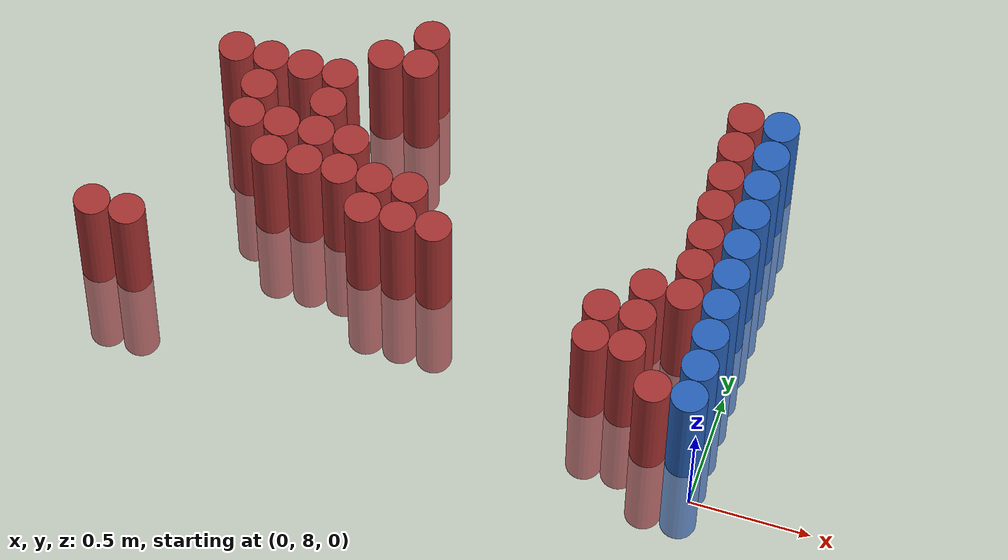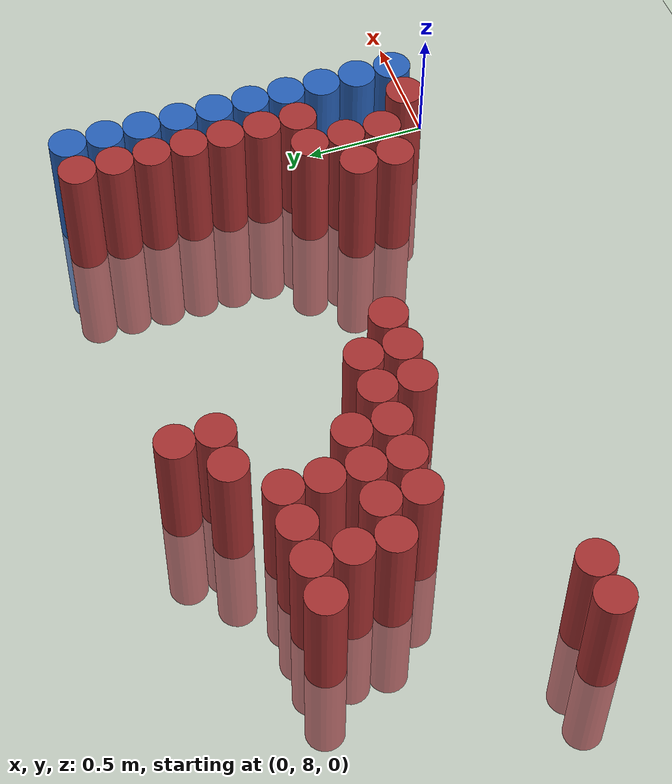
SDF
<sdf version="1.6">
 <world name="default">
  <model name="ground_plane">
   <static>1</static>
   <link name="link">
    <collision name="collision">
     <geometry><plane><normal>0 0 1</normal><size>100 100</size></plane></geometry>
     <surface><friction><ode><mu>100</mu><mu2>50</mu2></ode></friction></surface>
    </collision>
    <visual name="visual">
     <cast_shadows>0</cast_shadows>
     <geometry><plane><normal>0 0 1</normal><size>100 100</size></plane></geometry>
     <material>
      <script><uri>file://media/materials/scripts/gazebo.material</uri><name>Gazebo/Grey</name></script>
     </material>
    </visual>
   </link>
  </model>
  <model name="unit_cylinder_167">
   <static>1</static>
   <pose>-2.625000 8.325000 0.000000 0.000000 0.000000 0.000000</pose>
   <link name="link">
    <inertial>
     <mass>1</mass>
     <inertia><ixx>0.145833</ixx><ixy>0</ixy><ixz>0</ixz><iyy>0.145833</iyy><iyz>0</iyz><izz>0.125</izz></inertia>
    </inertial>
    <collision name="collision">
     <geometry><cylinder><radius>0.075000</radius><length>1</length></cylinder></geometry>
    </collision>
    <visual name="visual">
     <geometry><cylinder><radius>0.075000</radius><length>1</length></cylinder></geometry>
     <material>
      <ambient>0.648000 0.192000 0.192000 1</ambient>
      <diffuse>0.648000 0.192000 0.192000 1</diffuse>
     </material>
     <material>
      <script><name>Gazebo/Grey</name><uri>file://media/materials/scripts/gazebo.material</uri></script>
     </material>
    </visual>
   </link>
  </model>
  <model name="unit_cylinder_173">
   <static>1</static>
   <pose>-2.475000 8.325000 0.000000 0.000000 0.000000 0.000000</pose>
   <link name="link">
    <inertial>
     <mass>1</mass>
     <inertia><ixx>0.145833</ixx><ixy>0</ixy><ixz>0</ixz><iyy>0.145833</iyy><iyz>0</iyz><izz>0.125</izz></inertia>
    </inertial>
    <collision name="collision">
     <geometry><cylinder><radius>0.075000</radius><length>1</length></cylinder></geometry>
    </collision>
    <visual name="visual">
     <geometry><cylinder><radius>0.075000</radius><length>1</length></cylinder></geometry>
     <material>
      <ambient>0.648000 0.192000 0.192000 1</ambient>
      <diffuse>0.648000 0.192000 0.192000 1</diffuse>
     </material>
     <material>
      <script><name>Gazebo/Grey</name><uri>file://media/materials/scripts/gazebo.material</uri></script>
     </material>
    </visual>
   </link>
  </model>
  <model name="unit_cylinder_183">
   <static>1</static>
   <pose>-2.325000 9.225000 0.000000 0.000000 0.000000 0.000000</pose>
   <link name="link">
    <inertial>
     <mass>1</mass>
     <inertia><ixx>0.145833</ixx><ixy>0</ixy><ixz>0</ixz><iyy>0.145833</iyy><iyz>0</iyz><izz>0.125</izz></inertia>
    </inertial>
    <collision name="collision">
     <geometry><cylinder><radius>0.075000</radius><length>1</length></cylinder></geometry>
    </collision>
    <visual name="visual">
     <geometry><cylinder><radius>0.075000</radius><length>1</length></cylinder></geometry>
     <material>
      <ambient>0.648000 0.192000 0.192000 1</ambient>
      <diffuse>0.648000 0.192000 0.192000 1</diffuse>
     </material>
     <material>
      <script><name>Gazebo/Grey</name><uri>file://media/materials/scripts/gazebo.material</uri></script>
     </material>
    </visual>
   </link>
  </model>
  <model name="unit_cylinder_187">
   <static>1</static>
   <pose>-2.175000 8.925000 0.000000 0.000000 0.000000 0.000000</pose>
   <link name="link">
    <inertial>
     <mass>1</mass>
     <inertia><ixx>0.145833</ixx><ixy>0</ixy><ixz>0</ixz><iyy>0.145833</iyy><iyz>0</iyz><izz>0.125</izz></inertia>
    </inertial>
    <collision name="collision">
     <geometry><cylinder><radius>0.075000</radius><length>1</length></cylinder></geometry>
    </collision>
    <visual name="visual">
     <geometry><cylinder><radius>0.075000</radius><length>1</length></cylinder></geometry>
     <material>
      <ambient>0.648000 0.192000 0.192000 1</ambient>
      <diffuse>0.648000 0.192000 0.192000 1</diffuse>
     </material>
     <material>
      <script><name>Gazebo/Grey</name><uri>file://media/materials/scripts/gazebo.material</uri></script>
     </material>
    </visual>
   </link>
  </model>
  <model name="unit_cylinder_188">
   <static>1</static>
   <pose>-2.175000 9.075000 0.000000 0.000000 0.000000 0.000000</pose>
   <link name="link">
    <inertial>
     <mass>1</mass>
     <inertia><ixx>0.145833</ixx><ixy>0</ixy><ixz>0</ixz><iyy>0.145833</iyy><iyz>0</iyz><izz>0.125</izz></inertia>
    </inertial>
    <collision name="collision">
     <geometry><cylinder><radius>0.075000</radius><length>1</length></cylinder></geometry>
    </collision>
    <visual name="visual">
     <geometry><cylinder><radius>0.075000</radius><length>1</length></cylinder></geometry>
     <material>
      <ambient>0.648000 0.192000 0.192000 1</ambient>
      <diffuse>0.648000 0.192000 0.192000 1</diffuse>
     </material>
     <material>
      <script><name>Gazebo/Grey</name><uri>file://media/materials/scripts/gazebo.material</uri></script>
     </material>
    </visual>
   </link>
  </model>
  <model name="unit_cylinder_189">
   <static>1</static>
   <pose>-2.175000 9.225000 0.000000 0.000000 0.000000 0.000000</pose>
   <link name="link">
    <inertial>
     <mass>1</mass>
     <inertia><ixx>0.145833</ixx><ixy>0</ixy><ixz>0</ixz><iyy>0.145833</iyy><iyz>0</iyz><izz>0.125</izz></inertia>
    </inertial>
    <collision name="collision">
     <geometry><cylinder><radius>0.075000</radius><length>1</length></cylinder></geometry>
    </collision>
    <visual name="visual">
     <geometry><cylinder><radius>0.075000</radius><length>1</length></cylinder></geometry>
     <material>
      <ambient>0.648000 0.192000 0.192000 1</ambient>
      <diffuse>0.648000 0.192000 0.192000 1</diffuse>
     </material>
     <material>
      <script><name>Gazebo/Grey</name><uri>file://media/materials/scripts/gazebo.material</uri></script>
     </material>
    </visual>
   </link>
  </model>
  <model name="unit_cylinder_190">
   <static>1</static>
   <pose>-2.025000 8.775000 0.000000 0.000000 0.000000 0.000000</pose>
   <link name="link">
    <inertial>
     <mass>1</mass>
     <inertia><ixx>0.145833</ixx><ixy>0</ixy><ixz>0</ixz><iyy>0.145833</iyy><iyz>0</iyz><izz>0.125</izz></inertia>
    </inertial>
    <collision name="collision">
     <geometry><cylinder><radius>0.075000</radius><length>1</length></cylinder></geometry>
    </collision>
    <visual name="visual">
     <geometry><cylinder><radius>0.075000</radius><length>1</length></cylinder></geometry>
     <material>
      <ambient>0.648000 0.192000 0.192000 1</ambient>
      <diffuse>0.648000 0.192000 0.192000 1</diffuse>
     </material>
     <material>
      <script><name>Gazebo/Grey</name><uri>file://media/materials/scripts/gazebo.material</uri></script>
     </material>
    </visual>
   </link>
  </model>
  <model name="unit_cylinder_191">
   <static>1</static>
   <pose>-2.025000 8.925000 0.000000 0.000000 0.000000 0.000000</pose>
   <link name="link">
    <inertial>
     <mass>1</mass>
     <inertia><ixx>0.145833</ixx><ixy>0</ixy><ixz>0</ixz><iyy>0.145833</iyy><iyz>0</iyz><izz>0.125</izz></inertia>
    </inertial>
    <collision name="collision">
     <geometry><cylinder><radius>0.075000</radius><length>1</length></cylinder></geometry>
    </collision>
    <visual name="visual">
     <geometry><cylinder><radius>0.075000</radius><length>1</length></cylinder></geometry>
     <material>
      <ambient>0.648000 0.192000 0.192000 1</ambient>
      <diffuse>0.648000 0.192000 0.192000 1</diffuse>
     </material>
     <material>
      <script><name>Gazebo/Grey</name><uri>file://media/materials/scripts/gazebo.material</uri></script>
     </material>
    </visual>
   </link>
  </model>
  <model name="unit_cylinder_192">
   <static>1</static>
   <pose>-2.025000 9.225000 0.000000 0.000000 0.000000 0.000000</pose>
   <link name="link">
    <inertial>
     <mass>1</mass>
     <inertia><ixx>0.145833</ixx><ixy>0</ixy><ixz>0</ixz><iyy>0.145833</iyy><iyz>0</iyz><izz>0.125</izz></inertia>
    </inertial>
    <collision name="collision">
     <geometry><cylinder><radius>0.075000</radius><length>1</length></cylinder></geometry>
    </collision>
    <visual name="visual">
     <geometry><cylinder><radius>0.075000</radius><length>1</length></cylinder></geometry>
     <material>
      <ambient>0.648000 0.192000 0.192000 1</ambient>
      <diffuse>0.648000 0.192000 0.192000 1</diffuse>
     </material>
     <material>
      <script><name>Gazebo/Grey</name><uri>file://media/materials/scripts/gazebo.material</uri></script>
     </material>
    </visual>
   </link>
  </model>
  <model name="unit_cylinder_193">
   <static>1</static>
   <pose>-1.875000 8.775000 0.000000 0.000000 0.000000 0.000000</pose>
   <link name="link">
    <inertial>
     <mass>1</mass>
     <inertia><ixx>0.145833</ixx><ixy>0</ixy><ixz>0</ixz><iyy>0.145833</iyy><iyz>0</iyz><izz>0.125</izz></inertia>
    </inertial>
    <collision name="collision">
     <geometry><cylinder><radius>0.075000</radius><length>1</length></cylinder></geometry>
    </collision>
    <visual name="visual">
     <geometry><cylinder><radius>0.075000</radius><length>1</length></cylinder></geometry>
     <material>
      <ambient>0.648000 0.192000 0.192000 1</ambient>
      <diffuse>0.648000 0.192000 0.192000 1</diffuse>
     </material>
     <material>
      <script><name>Gazebo/Grey</name><uri>file://media/materials/scripts/gazebo.material</uri></script>
     </material>
    </visual>
   </link>
  </model>
  <model name="unit_cylinder_194">
   <static>1</static>
   <pose>-1.875000 8.925000 0.000000 0.000000 0.000000 0.000000</pose>
   <link name="link">
    <inertial>
     <mass>1</mass>
     <inertia><ixx>0.145833</ixx><ixy>0</ixy><ixz>0</ixz><iyy>0.145833</iyy><iyz>0</iyz><izz>0.125</izz></inertia>
    </inertial>
    <collision name="collision">
     <geometry><cylinder><radius>0.075000</radius><length>1</length></cylinder></geometry>
    </collision>
    <visual name="visual">
     <geometry><cylinder><radius>0.075000</radius><length>1</length></cylinder></geometry>
     <material>
      <ambient>0.648000 0.192000 0.192000 1</ambient>
      <diffuse>0.648000 0.192000 0.192000 1</diffuse>
     </material>
     <material>
      <script><name>Gazebo/Grey</name><uri>file://media/materials/scripts/gazebo.material</uri></script>
     </material>
    </visual>
   </link>
  </model>
  <model name="unit_cylinder_195">
   <static>1</static>
   <pose>-1.875000 9.075000 0.000000 0.000000 0.000000 0.000000</pose>
   <link name="link">
    <inertial>
     <mass>1</mass>
     <inertia><ixx>0.145833</ixx><ixy>0</ixy><ixz>0</ixz><iyy>0.145833</iyy><iyz>0</iyz><izz>0.125</izz></inertia>
    </inertial>
    <collision name="collision">
     <geometry><cylinder><radius>0.075000</radius><length>1</length></cylinder></geometry>
    </collision>
    <visual name="visual">
     <geometry><cylinder><radius>0.075000</radius><length>1</length></cylinder></geometry>
     <material>
      <ambient>0.648000 0.192000 0.192000 1</ambient>
      <diffuse>0.648000 0.192000 0.192000 1</diffuse>
     </material>
     <material>
      <script><name>Gazebo/Grey</name><uri>file://media/materials/scripts/gazebo.material</uri></script>
     </material>
    </visual>
   </link>
  </model>
  <model name="unit_cylinder_196">
   <static>1</static>
   <pose>-1.875000 9.225000 0.000000 0.000000 0.000000 0.000000</pose>
   <link name="link">
    <inertial>
     <mass>1</mass>
     <inertia><ixx>0.145833</ixx><ixy>0</ixy><ixz>0</ixz><iyy>0.145833</iyy><iyz>0</iyz><izz>0.125</izz></inertia>
    </inertial>
    <collision name="collision">
     <geometry><cylinder><radius>0.075000</radius><length>1</length></cylinder></geometry>
    </collision>
    <visual name="visual">
     <geometry><cylinder><radius>0.075000</radius><length>1</length></cylinder></geometry>
     <material>
      <ambient>0.648000 0.192000 0.192000 1</ambient>
      <diffuse>0.648000 0.192000 0.192000 1</diffuse>
     </material>
     <material>
      <script><name>Gazebo/Grey</name><uri>file://media/materials/scripts/gazebo.material</uri></script>
     </material>
    </visual>
   </link>
  </model>
  <model name="unit_cylinder_197">
   <static>1</static>
   <pose>-1.725000 8.775000 0.000000 0.000000 0.000000 0.000000</pose>
   <link name="link">
    <inertial>
     <mass>1</mass>
     <inertia><ixx>0.145833</ixx><ixy>0</ixy><ixz>0</ixz><iyy>0.145833</iyy><iyz>0</iyz><izz>0.125</izz></inertia>
    </inertial>
    <collision name="collision">
     <geometry><cylinder><radius>0.075000</radius><length>1</length></cylinder></geometry>
    </collision>
    <visual name="visual">
     <geometry><cylinder><radius>0.075000</radius><length>1</length></cylinder></geometry>
     <material>
      <ambient>0.648000 0.192000 0.192000 1</ambient>
      <diffuse>0.648000 0.192000 0.192000 1</diffuse>
     </material>
     <material>
      <script><name>Gazebo/Grey</name><uri>file://media/materials/scripts/gazebo.material</uri></script>
     </material>
    </visual>
   </link>
  </model>
  <model name="unit_cylinder_198">
   <static>1</static>
   <pose>-1.725000 8.925000 0.000000 0.000000 0.000000 0.000000</pose>
   <link name="link">
    <inertial>
     <mass>1</mass>
     <inertia><ixx>0.145833</ixx><ixy>0</ixy><ixz>0</ixz><iyy>0.145833</iyy><iyz>0</iyz><izz>0.125</izz></inertia>
    </inertial>
    <collision name="collision">
     <geometry><cylinder><radius>0.075000</radius><length>1</length></cylinder></geometry>
    </collision>
    <visual name="visual">
     <geometry><cylinder><radius>0.075000</radius><length>1</length></cylinder></geometry>
     <material>
      <ambient>0.648000 0.192000 0.192000 1</ambient>
      <diffuse>0.648000 0.192000 0.192000 1</diffuse>
     </material>
     <material>
      <script><name>Gazebo/Grey</name><uri>file://media/materials/scripts/gazebo.material</uri></script>
     </material>
    </visual>
   </link>
  </model>
  <model name="unit_cylinder_199">
   <static>1</static>
   <pose>-1.725000 9.375000 0.000000 0.000000 0.000000 0.000000</pose>
   <link name="link">
    <inertial>
     <mass>1</mass>
     <inertia><ixx>0.145833</ixx><ixy>0</ixy><ixz>0</ixz><iyy>0.145833</iyy><iyz>0</iyz><izz>0.125</izz></inertia>
    </inertial>
    <collision name="collision">
     <geometry><cylinder><radius>0.075000</radius><length>1</length></cylinder></geometry>
    </collision>
    <visual name="visual">
     <geometry><cylinder><radius>0.075000</radius><length>1</length></cylinder></geometry>
     <material>
      <ambient>0.648000 0.192000 0.192000 1</ambient>
      <diffuse>0.648000 0.192000 0.192000 1</diffuse>
     </material>
     <material>
      <script><name>Gazebo/Grey</name><uri>file://media/materials/scripts/gazebo.material</uri></script>
     </material>
    </visual>
   </link>
  </model>
  <model name="unit_cylinder_203">
   <static>1</static>
   <pose>-1.575000 8.625000 0.000000 0.000000 0.000000 0.000000</pose>
   <link name="link">
    <inertial>
     <mass>1</mass>
     <inertia><ixx>0.145833</ixx><ixy>0</ixy><ixz>0</ixz><iyy>0.145833</iyy><iyz>0</iyz><izz>0.125</izz></inertia>
    </inertial>
    <collision name="collision">
     <geometry><cylinder><radius>0.075000</radius><length>1</length></cylinder></geometry>
    </collision>
    <visual name="visual">
     <geometry><cylinder><radius>0.075000</radius><length>1</length></cylinder></geometry>
     <material>
      <ambient>0.648000 0.192000 0.192000 1</ambient>
      <diffuse>0.648000 0.192000 0.192000 1</diffuse>
     </material>
     <material>
      <script><name>Gazebo/Grey</name><uri>file://media/materials/scripts/gazebo.material</uri></script>
     </material>
    </visual>
   </link>
  </model>
  <model name="unit_cylinder_204">
   <static>1</static>
   <pose>-1.575000 8.775000 0.000000 0.000000 0.000000 0.000000</pose>
   <link name="link">
    <inertial>
     <mass>1</mass>
     <inertia><ixx>0.145833</ixx><ixy>0</ixy><ixz>0</ixz><iyy>0.145833</iyy><iyz>0</iyz><izz>0.125</izz></inertia>
    </inertial>
    <collision name="collision">
     <geometry><cylinder><radius>0.075000</radius><length>1</length></cylinder></geometry>
    </collision>
    <visual name="visual">
     <geometry><cylinder><radius>0.075000</radius><length>1</length></cylinder></geometry>
     <material>
      <ambient>0.648000 0.192000 0.192000 1</ambient>
      <diffuse>0.648000 0.192000 0.192000 1</diffuse>
     </material>
     <material>
      <script><name>Gazebo/Grey</name><uri>file://media/materials/scripts/gazebo.material</uri></script>
     </material>
    </visual>
   </link>
  </model>
  <model name="unit_cylinder_205">
   <static>1</static>
   <pose>-1.575000 9.375000 0.000000 0.000000 0.000000 0.000000</pose>
   <link name="link">
    <inertial>
     <mass>1</mass>
     <inertia><ixx>0.145833</ixx><ixy>0</ixy><ixz>0</ixz><iyy>0.145833</iyy><iyz>0</iyz><izz>0.125</izz></inertia>
    </inertial>
    <collision name="collision">
     <geometry><cylinder><radius>0.075000</radius><length>1</length></cylinder></geometry>
    </collision>
    <visual name="visual">
     <geometry><cylinder><radius>0.075000</radius><length>1</length></cylinder></geometry>
     <material>
      <ambient>0.648000 0.192000 0.192000 1</ambient>
      <diffuse>0.648000 0.192000 0.192000 1</diffuse>
     </material>
     <material>
      <script><name>Gazebo/Grey</name><uri>file://media/materials/scripts/gazebo.material</uri></script>
     </material>
    </visual>
   </link>
  </model>
  <model name="unit_cylinder_206">
   <static>1</static>
   <pose>-1.575000 9.525000 0.000000 0.000000 0.000000 0.000000</pose>
   <link name="link">
    <inertial>
     <mass>1</mass>
     <inertia><ixx>0.145833</ixx><ixy>0</ixy><ixz>0</ixz><iyy>0.145833</iyy><iyz>0</iyz><izz>0.125</izz></inertia>
    </inertial>
    <collision name="collision">
     <geometry><cylinder><radius>0.075000</radius><length>1</length></cylinder></geometry>
    </collision>
    <visual name="visual">
     <geometry><cylinder><radius>0.075000</radius><length>1</length></cylinder></geometry>
     <material>
      <ambient>0.648000 0.192000 0.192000 1</ambient>
      <diffuse>0.648000 0.192000 0.192000 1</diffuse>
     </material>
     <material>
      <script><name>Gazebo/Grey</name><uri>file://media/materials/scripts/gazebo.material</uri></script>
     </material>
    </visual>
   </link>
  </model>
  <model name="unit_cylinder_211">
   <static>1</static>
   <pose>-1.425000 8.625000 0.000000 0.000000 0.000000 0.000000</pose>
   <link name="link">
    <inertial>
     <mass>1</mass>
     <inertia><ixx>0.145833</ixx><ixy>0</ixy><ixz>0</ixz><iyy>0.145833</iyy><iyz>0</iyz><izz>0.125</izz></inertia>
    </inertial>
    <collision name="collision">
     <geometry><cylinder><radius>0.075000</radius><length>1</length></cylinder></geometry>
    </collision>
    <visual name="visual">
     <geometry><cylinder><radius>0.075000</radius><length>1</length></cylinder></geometry>
     <material>
      <ambient>0.648000 0.192000 0.192000 1</ambient>
      <diffuse>0.648000 0.192000 0.192000 1</diffuse>
     </material>
     <material>
      <script><name>Gazebo/Grey</name><uri>file://media/materials/scripts/gazebo.material</uri></script>
     </material>
    </visual>
   </link>
  </model>
  <model name="unit_cylinder_212">
   <static>1</static>
   <pose>-1.425000 8.775000 0.000000 0.000000 0.000000 0.000000</pose>
   <link name="link">
    <inertial>
     <mass>1</mass>
     <inertia><ixx>0.145833</ixx><ixy>0</ixy><ixz>0</ixz><iyy>0.145833</iyy><iyz>0</iyz><izz>0.125</izz></inertia>
    </inertial>
    <collision name="collision">
     <geometry><cylinder><radius>0.075000</radius><length>1</length></cylinder></geometry>
    </collision>
    <visual name="visual">
     <geometry><cylinder><radius>0.075000</radius><length>1</length></cylinder></geometry>
     <material>
      <ambient>0.648000 0.192000 0.192000 1</ambient>
      <diffuse>0.648000 0.192000 0.192000 1</diffuse>
     </material>
     <material>
      <script><name>Gazebo/Grey</name><uri>file://media/materials/scripts/gazebo.material</uri></script>
     </material>
    </visual>
   </link>
  </model>
  <model name="unit_cylinder_213">
   <static>1</static>
   <pose>-1.275000 8.625000 0.000000 0.000000 0.000000 0.000000</pose>
   <link name="link">
    <inertial>
     <mass>1</mass>
     <inertia><ixx>0.145833</ixx><ixy>0</ixy><ixz>0</ixz><iyy>0.145833</iyy><iyz>0</iyz><izz>0.125</izz></inertia>
    </inertial>
    <collision name="collision">
     <geometry><cylinder><radius>0.075000</radius><length>1</length></cylinder></geometry>
    </collision>
    <visual name="visual">
     <geometry><cylinder><radius>0.075000</radius><length>1</length></cylinder></geometry>
     <material>
      <ambient>0.648000 0.192000 0.192000 1</ambient>
      <diffuse>0.648000 0.192000 0.192000 1</diffuse>
     </material>
     <material>
      <script><name>Gazebo/Grey</name><uri>file://media/materials/scripts/gazebo.material</uri></script>
     </material>
    </visual>
   </link>
  </model>
  <model name="unit_cylinder_220">
   <static>1</static>
   <pose>-0.525000 8.325000 0.000000 0.000000 0.000000 0.000000</pose>
   <link name="link">
    <inertial>
     <mass>1</mass>
     <inertia><ixx>0.145833</ixx><ixy>0</ixy><ixz>0</ixz><iyy>0.145833</iyy><iyz>0</iyz><izz>0.125</izz></inertia>
    </inertial>
    <collision name="collision">
     <geometry><cylinder><radius>0.075000</radius><length>1</length></cylinder></geometry>
    </collision>
    <visual name="visual">
     <geometry><cylinder><radius>0.075000</radius><length>1</length></cylinder></geometry>
     <material>
      <ambient>0.648000 0.192000 0.192000 1</ambient>
      <diffuse>0.648000 0.192000 0.192000 1</diffuse>
     </material>
     <material>
      <script><name>Gazebo/Grey</name><uri>file://media/materials/scripts/gazebo.material</uri></script>
     </material>
    </visual>
   </link>
  </model>
  <model name="unit_cylinder_221">
   <static>1</static>
   <pose>-0.525000 8.475000 0.000000 0.000000 0.000000 0.000000</pose>
   <link name="link">
    <inertial>
     <mass>1</mass>
     <inertia><ixx>0.145833</ixx><ixy>0</ixy><ixz>0</ixz><iyy>0.145833</iyy><iyz>0</iyz><izz>0.125</izz></inertia>
    </inertial>
    <collision name="collision">
     <geometry><cylinder><radius>0.075000</radius><length>1</length></cylinder></geometry>
    </collision>
    <visual name="visual">
     <geometry><cylinder><radius>0.075000</radius><length>1</length></cylinder></geometry>
     <material>
      <ambient>0.648000 0.192000 0.192000 1</ambient>
      <diffuse>0.648000 0.192000 0.192000 1</diffuse>
     </material>
     <material>
      <script><name>Gazebo/Grey</name><uri>file://media/materials/scripts/gazebo.material</uri></script>
     </material>
    </visual>
   </link>
  </model>
  <model name="unit_cylinder_226">
   <static>1</static>
   <pose>-0.375000 8.325000 0.000000 0.000000 0.000000 0.000000</pose>
   <link name="link">
    <inertial>
     <mass>1</mass>
     <inertia><ixx>0.145833</ixx><ixy>0</ixy><ixz>0</ixz><iyy>0.145833</iyy><iyz>0</iyz><izz>0.125</izz></inertia>
    </inertial>
    <collision name="collision">
     <geometry><cylinder><radius>0.075000</radius><length>1</length></cylinder></geometry>
    </collision>
    <visual name="visual">
     <geometry><cylinder><radius>0.075000</radius><length>1</length></cylinder></geometry>
     <material>
      <ambient>0.648000 0.192000 0.192000 1</ambient>
      <diffuse>0.648000 0.192000 0.192000 1</diffuse>
     </material>
     <material>
      <script><name>Gazebo/Grey</name><uri>file://media/materials/scripts/gazebo.material</uri></script>
     </material>
    </visual>
   </link>
  </model>
  <model name="unit_cylinder_227">
   <static>1</static>
   <pose>-0.375000 8.475000 0.000000 0.000000 0.000000 0.000000</pose>
   <link name="link">
    <inertial>
     <mass>1</mass>
     <inertia><ixx>0.145833</ixx><ixy>0</ixy><ixz>0</ixz><iyy>0.145833</iyy><iyz>0</iyz><izz>0.125</izz></inertia>
    </inertial>
    <collision name="collision">
     <geometry><cylinder><radius>0.075000</radius><length>1</length></cylinder></geometry>
    </collision>
    <visual name="visual">
     <geometry><cylinder><radius>0.075000</radius><length>1</length></cylinder></geometry>
     <material>
      <ambient>0.648000 0.192000 0.192000 1</ambient>
      <diffuse>0.648000 0.192000 0.192000 1</diffuse>
     </material>
     <material>
      <script><name>Gazebo/Grey</name><uri>file://media/materials/scripts/gazebo.material</uri></script>
     </material>
    </visual>
   </link>
  </model>
  <model name="unit_cylinder_228">
   <static>1</static>
   <pose>-0.375000 8.625000 0.000000 0.000000 0.000000 0.000000</pose>
   <link name="link">
    <inertial>
     <mass>1</mass>
     <inertia><ixx>0.145833</ixx><ixy>0</ixy><ixz>0</ixz><iyy>0.145833</iyy><iyz>0</iyz><izz>0.125</izz></inertia>
    </inertial>
    <collision name="collision">
     <geometry><cylinder><radius>0.075000</radius><length>1</length></cylinder></geometry>
    </collision>
    <visual name="visual">
     <geometry><cylinder><radius>0.075000</radius><length>1</length></cylinder></geometry>
     <material>
      <ambient>0.648000 0.192000 0.192000 1</ambient>
      <diffuse>0.648000 0.192000 0.192000 1</diffuse>
     </material>
     <material>
      <script><name>Gazebo/Grey</name><uri>file://media/materials/scripts/gazebo.material</uri></script>
     </material>
    </visual>
   </link>
  </model>
  <model name="unit_cylinder_239">
   <static>1</static>
   <pose>-0.225000 8.175000 0.000000 0.000000 0.000000 0.000000</pose>
   <link name="link">
    <inertial>
     <mass>1</mass>
     <inertia><ixx>0.145833</ixx><ixy>0</ixy><ixz>0</ixz><iyy>0.145833</iyy><iyz>0</iyz><izz>0.125</izz></inertia>
    </inertial>
    <collision name="collision">
     <geometry><cylinder><radius>0.075000</radius><length>1</length></cylinder></geometry>
    </collision>
    <visual name="visual">
     <geometry><cylinder><radius>0.075000</radius><length>1</length></cylinder></geometry>
     <material>
      <ambient>0.648000 0.192000 0.192000 1</ambient>
      <diffuse>0.648000 0.192000 0.192000 1</diffuse>
     </material>
     <material>
      <script><name>Gazebo/Grey</name><uri>file://media/materials/scripts/gazebo.material</uri></script>
     </material>
    </visual>
   </link>
  </model>
  <model name="unit_cylinder_240">
   <static>1</static>
   <pose>-0.225000 8.625000 0.000000 0.000000 0.000000 0.000000</pose>
   <link name="link">
    <inertial>
     <mass>1</mass>
     <inertia><ixx>0.145833</ixx><ixy>0</ixy><ixz>0</ixz><iyy>0.145833</iyy><iyz>0</iyz><izz>0.125</izz></inertia>
    </inertial>
    <collision name="collision">
     <geometry><cylinder><radius>0.075000</radius><length>1</length></cylinder></geometry>
    </collision>
    <visual name="visual">
     <geometry><cylinder><radius>0.075000</radius><length>1</length></cylinder></geometry>
     <material>
      <ambient>0.648000 0.192000 0.192000 1</ambient>
      <diffuse>0.648000 0.192000 0.192000 1</diffuse>
     </material>
     <material>
      <script><name>Gazebo/Grey</name><uri>file://media/materials/scripts/gazebo.material</uri></script>
     </material>
    </visual>
   </link>
  </model>
  <model name="unit_cylinder_241">
   <static>1</static>
   <pose>-0.225000 8.775000 0.000000 0.000000 0.000000 0.000000</pose>
   <link name="link">
    <inertial>
     <mass>1</mass>
     <inertia><ixx>0.145833</ixx><ixy>0</ixy><ixz>0</ixz><iyy>0.145833</iyy><iyz>0</iyz><izz>0.125</izz></inertia>
    </inertial>
    <collision name="collision">
     <geometry><cylinder><radius>0.075000</radius><length>1</length></cylinder></geometry>
    </collision>
    <visual name="visual">
     <geometry><cylinder><radius>0.075000</radius><length>1</length></cylinder></geometry>
     <material>
      <ambient>0.648000 0.192000 0.192000 1</ambient>
      <diffuse>0.648000 0.192000 0.192000 1</diffuse>
     </material>
     <material>
      <script><name>Gazebo/Grey</name><uri>file://media/materials/scripts/gazebo.material</uri></script>
     </material>
    </visual>
   </link>
  </model>
  <model name="unit_cylinder_242">
   <static>1</static>
   <pose>-0.225000 8.925000 0.000000 0.000000 0.000000 0.000000</pose>
   <link name="link">
    <inertial>
     <mass>1</mass>
     <inertia><ixx>0.145833</ixx><ixy>0</ixy><ixz>0</ixz><iyy>0.145833</iyy><iyz>0</iyz><izz>0.125</izz></inertia>
    </inertial>
    <collision name="collision">
     <geometry><cylinder><radius>0.075000</radius><length>1</length></cylinder></geometry>
    </collision>
    <visual name="visual">
     <geometry><cylinder><radius>0.075000</radius><length>1</length></cylinder></geometry>
     <material>
      <ambient>0.648000 0.192000 0.192000 1</ambient>
      <diffuse>0.648000 0.192000 0.192000 1</diffuse>
     </material>
     <material>
      <script><name>Gazebo/Grey</name><uri>file://media/materials/scripts/gazebo.material</uri></script>
     </material>
    </visual>
   </link>
  </model>
  <model name="unit_cylinder_243">
   <static>1</static>
   <pose>-0.225000 9.075000 0.000000 0.000000 0.000000 0.000000</pose>
   <link name="link">
    <inertial>
     <mass>1</mass>
     <inertia><ixx>0.145833</ixx><ixy>0</ixy><ixz>0</ixz><iyy>0.145833</iyy><iyz>0</iyz><izz>0.125</izz></inertia>
    </inertial>
    <collision name="collision">
     <geometry><cylinder><radius>0.075000</radius><length>1</length></cylinder></geometry>
    </collision>
    <visual name="visual">
     <geometry><cylinder><radius>0.075000</radius><length>1</length></cylinder></geometry>
     <material>
      <ambient>0.648000 0.192000 0.192000 1</ambient>
      <diffuse>0.648000 0.192000 0.192000 1</diffuse>
     </material>
     <material>
      <script><name>Gazebo/Grey</name><uri>file://media/materials/scripts/gazebo.material</uri></script>
     </material>
    </visual>
   </link>
  </model>
  <model name="unit_cylinder_244">
   <static>1</static>
   <pose>-0.225000 9.225000 0.000000 0.000000 0.000000 0.000000</pose>
   <link name="link">
    <inertial>
     <mass>1</mass>
     <inertia><ixx>0.145833</ixx><ixy>0</ixy><ixz>0</ixz><iyy>0.145833</iyy><iyz>0</iyz><izz>0.125</izz></inertia>
    </inertial>
    <collision name="collision">
     <geometry><cylinder><radius>0.075000</radius><length>1</length></cylinder></geometry>
    </collision>
    <visual name="visual">
     <geometry><cylinder><radius>0.075000</radius><length>1</length></cylinder></geometry>
     <material>
      <ambient>0.648000 0.192000 0.192000 1</ambient>
      <diffuse>0.648000 0.192000 0.192000 1</diffuse>
     </material>
     <material>
      <script><name>Gazebo/Grey</name><uri>file://media/materials/scripts/gazebo.material</uri></script>
     </material>
    </visual>
   </link>
  </model>
  <model name="unit_cylinder_245">
   <static>1</static>
   <pose>-0.225000 9.375000 0.000000 0.000000 0.000000 0.000000</pose>
   <link name="link">
    <inertial>
     <mass>1</mass>
     <inertia><ixx>0.145833</ixx><ixy>0</ixy><ixz>0</ixz><iyy>0.145833</iyy><iyz>0</iyz><izz>0.125</izz></inertia>
    </inertial>
    <collision name="collision">
     <geometry><cylinder><radius>0.075000</radius><length>1</length></cylinder></geometry>
    </collision>
    <visual name="visual">
     <geometry><cylinder><radius>0.075000</radius><length>1</length></cylinder></geometry>
     <material>
      <ambient>0.648000 0.192000 0.192000 1</ambient>
      <diffuse>0.648000 0.192000 0.192000 1</diffuse>
     </material>
     <material>
      <script><name>Gazebo/Grey</name><uri>file://media/materials/scripts/gazebo.material</uri></script>
     </material>
    </visual>
   </link>
  </model>
  <model name="unit_cylinder_246">
   <static>1</static>
   <pose>-0.225000 9.525000 0.000000 0.000000 0.000000 0.000000</pose>
   <link name="link">
    <inertial>
     <mass>1</mass>
     <inertia><ixx>0.145833</ixx><ixy>0</ixy><ixz>0</ixz><iyy>0.145833</iyy><iyz>0</iyz><izz>0.125</izz></inertia>
    </inertial>
    <collision name="collision">
     <geometry><cylinder><radius>0.075000</radius><length>1</length></cylinder></geometry>
    </collision>
    <visual name="visual">
     <geometry><cylinder><radius>0.075000</radius><length>1</length></cylinder></geometry>
     <material>
      <ambient>0.648000 0.192000 0.192000 1</ambient>
      <diffuse>0.648000 0.192000 0.192000 1</diffuse>
     </material>
     <material>
      <script><name>Gazebo/Grey</name><uri>file://media/materials/scripts/gazebo.material</uri></script>
     </material>
    </visual>
   </link>
  </model>
  <model name="unit_cylinder_267">
   <static>1</static>
   <pose>-0.075000 8.175000 0.000000 0.000000 0.000000 0.000000</pose>
   <link name="link">
    <inertial>
     <mass>1</mass>
     <inertia><ixx>0.145833</ixx><ixy>0</ixy><ixz>0</ixz><iyy>0.145833</iyy><iyz>0</iyz><izz>0.125</izz></inertia>
    </inertial>
    <collision name="collision">
     <geometry><cylinder><radius>0.075000</radius><length>1</length></cylinder></geometry>
    </collision>
    <visual name="visual">
     <geometry><cylinder><radius>0.075000</radius><length>1</length></cylinder></geometry>
     <material>
      <ambient>0.152000 0.379000 0.720000 1</ambient>
      <diffuse>0.152000 0.379000 0.720000 1</diffuse>
     </material>
     <material>
      <script><name>Gazebo/Grey</name><uri>file://media/materials/scripts/gazebo.material</uri></script>
     </material>
    </visual>
   </link>
  </model>
  <model name="unit_cylinder_268">
   <static>1</static>
   <pose>-0.075000 8.325000 0.000000 0.000000 0.000000 0.000000</pose>
   <link name="link">
    <inertial>
     <mass>1</mass>
     <inertia><ixx>0.145833</ixx><ixy>0</ixy><ixz>0</ixz><iyy>0.145833</iyy><iyz>0</iyz><izz>0.125</izz></inertia>
    </inertial>
    <collision name="collision">
     <geometry><cylinder><radius>0.075000</radius><length>1</length></cylinder></geometry>
    </collision>
    <visual name="visual">
     <geometry><cylinder><radius>0.075000</radius><length>1</length></cylinder></geometry>
     <material>
      <ambient>0.152000 0.379000 0.720000 1</ambient>
      <diffuse>0.152000 0.379000 0.720000 1</diffuse>
     </material>
     <material>
      <script><name>Gazebo/Grey</name><uri>file://media/materials/scripts/gazebo.material</uri></script>
     </material>
    </visual>
   </link>
  </model>
  <model name="unit_cylinder_269">
   <static>1</static>
   <pose>-0.075000 8.475000 0.000000 0.000000 0.000000 0.000000</pose>
   <link name="link">
    <inertial>
     <mass>1</mass>
     <inertia><ixx>0.145833</ixx><ixy>0</ixy><ixz>0</ixz><iyy>0.145833</iyy><iyz>0</iyz><izz>0.125</izz></inertia>
    </inertial>
    <collision name="collision">
     <geometry><cylinder><radius>0.075000</radius><length>1</length></cylinder></geometry>
    </collision>
    <visual name="visual">
     <geometry><cylinder><radius>0.075000</radius><length>1</length></cylinder></geometry>
     <material>
      <ambient>0.152000 0.379000 0.720000 1</ambient>
      <diffuse>0.152000 0.379000 0.720000 1</diffuse>
     </material>
     <material>
      <script><name>Gazebo/Grey</name><uri>file://media/materials/scripts/gazebo.material</uri></script>
     </material>
    </visual>
   </link>
  </model>
  <model name="unit_cylinder_270">
   <static>1</static>
   <pose>-0.075000 8.625000 0.000000 0.000000 0.000000 0.000000</pose>
   <link name="link">
    <inertial>
     <mass>1</mass>
     <inertia><ixx>0.145833</ixx><ixy>0</ixy><ixz>0</ixz><iyy>0.145833</iyy><iyz>0</iyz><izz>0.125</izz></inertia>
    </inertial>
    <collision name="collision">
     <geometry><cylinder><radius>0.075000</radius><length>1</length></cylinder></geometry>
    </collision>
    <visual name="visual">
     <geometry><cylinder><radius>0.075000</radius><length>1</length></cylinder></geometry>
     <material>
      <ambient>0.152000 0.379000 0.720000 1</ambient>
      <diffuse>0.152000 0.379000 0.720000 1</diffuse>
     </material>
     <material>
      <script><name>Gazebo/Grey</name><uri>file://media/materials/scripts/gazebo.material</uri></script>
     </material>
    </visual>
   </link>
  </model>
  <model name="unit_cylinder_271">
   <static>1</static>
   <pose>-0.075000 8.775000 0.000000 0.000000 0.000000 0.000000</pose>
   <link name="link">
    <inertial>
     <mass>1</mass>
     <inertia><ixx>0.145833</ixx><ixy>0</ixy><ixz>0</ixz><iyy>0.145833</iyy><iyz>0</iyz><izz>0.125</izz></inertia>
    </inertial>
    <collision name="collision">
     <geometry><cylinder><radius>0.075000</radius><length>1</length></cylinder></geometry>
    </collision>
    <visual name="visual">
     <geometry><cylinder><radius>0.075000</radius><length>1</length></cylinder></geometry>
     <material>
      <ambient>0.152000 0.379000 0.720000 1</ambient>
      <diffuse>0.152000 0.379000 0.720000 1</diffuse>
     </material>
     <material>
      <script><name>Gazebo/Grey</name><uri>file://media/materials/scripts/gazebo.material</uri></script>
     </material>
    </visual>
   </link>
  </model>
  <model name="unit_cylinder_272">
   <static>1</static>
   <pose>-0.075000 8.925000 0.000000 0.000000 0.000000 0.000000</pose>
   <link name="link">
    <inertial>
     <mass>1</mass>
     <inertia><ixx>0.145833</ixx><ixy>0</ixy><ixz>0</ixz><iyy>0.145833</iyy><iyz>0</iyz><izz>0.125</izz></inertia>
    </inertial>
    <collision name="collision">
     <geometry><cylinder><radius>0.075000</radius><length>1</length></cylinder></geometry>
    </collision>
    <visual name="visual">
     <geometry><cylinder><radius>0.075000</radius><length>1</length></cylinder></geometry>
     <material>
      <ambient>0.152000 0.379000 0.720000 1</ambient>
      <diffuse>0.152000 0.379000 0.720000 1</diffuse>
     </material>
     <material>
      <script><name>Gazebo/Grey</name><uri>file://media/materials/scripts/gazebo.material</uri></script>
     </material>
    </visual>
   </link>
  </model>
  <model name="unit_cylinder_273">
   <static>1</static>
   <pose>-0.075000 9.075000 0.000000 0.000000 0.000000 0.000000</pose>
   <link name="link">
    <inertial>
     <mass>1</mass>
     <inertia><ixx>0.145833</ixx><ixy>0</ixy><ixz>0</ixz><iyy>0.145833</iyy><iyz>0</iyz><izz>0.125</izz></inertia>
    </inertial>
    <collision name="collision">
     <geometry><cylinder><radius>0.075000</radius><length>1</length></cylinder></geometry>
    </collision>
    <visual name="visual">
     <geometry><cylinder><radius>0.075000</radius><length>1</length></cylinder></geometry>
     <material>
      <ambient>0.152000 0.379000 0.720000 1</ambient>
      <diffuse>0.152000 0.379000 0.720000 1</diffuse>
     </material>
     <material>
      <script><name>Gazebo/Grey</name><uri>file://media/materials/scripts/gazebo.material</uri></script>
     </material>
    </visual>
   </link>
  </model>
  <model name="unit_cylinder_274">
   <static>1</static>
   <pose>-0.075000 9.225000 0.000000 0.000000 0.000000 0.000000</pose>
   <link name="link">
    <inertial>
     <mass>1</mass>
     <inertia><ixx>0.145833</ixx><ixy>0</ixy><ixz>0</ixz><iyy>0.145833</iyy><iyz>0</iyz><izz>0.125</izz></inertia>
    </inertial>
    <collision name="collision">
     <geometry><cylinder><radius>0.075000</radius><length>1</length></cylinder></geometry>
    </collision>
    <visual name="visual">
     <geometry><cylinder><radius>0.075000</radius><length>1</length></cylinder></geometry>
     <material>
      <ambient>0.152000 0.379000 0.720000 1</ambient>
      <diffuse>0.152000 0.379000 0.720000 1</diffuse>
     </material>
     <material>
      <script><name>Gazebo/Grey</name><uri>file://media/materials/scripts/gazebo.material</uri></script>
     </material>
    </visual>
   </link>
  </model>
  <model name="unit_cylinder_275">
   <static>1</static>
   <pose>-0.075000 9.375000 0.000000 0.000000 0.000000 0.000000</pose>
   <link name="link">
    <inertial>
     <mass>1</mass>
     <inertia><ixx>0.145833</ixx><ixy>0</ixy><ixz>0</ixz><iyy>0.145833</iyy><iyz>0</iyz><izz>0.125</izz></inertia>
    </inertial>
    <collision name="collision">
     <geometry><cylinder><radius>0.075000</radius><length>1</length></cylinder></geometry>
    </collision>
    <visual name="visual">
     <geometry><cylinder><radius>0.075000</radius><length>1</length></cylinder></geometry>
     <material>
      <ambient>0.152000 0.379000 0.720000 1</ambient>
      <diffuse>0.152000 0.379000 0.720000 1</diffuse>
     </material>
     <material>
      <script><name>Gazebo/Grey</name><uri>file://media/materials/scripts/gazebo.material</uri></script>
     </material>
    </visual>
   </link>
  </model>
  <model name="unit_cylinder_276">
   <static>1</static>
   <pose>-0.075000 9.525000 0.000000 0.000000 0.000000 0.000000</pose>
   <link name="link">
    <inertial>
     <mass>1</mass>
     <inertia><ixx>0.145833</ixx><ixy>0</ixy><ixz>0</ixz><iyy>0.145833</iyy><iyz>0</iyz><izz>0.125</izz></inertia>
    </inertial>
    <collision name="collision">
     <geometry><cylinder><radius>0.075000</radius><length>1</length></cylinder></geometry>
    </collision>
    <visual name="visual">
     <geometry><cylinder><radius>0.075000</radius><length>1</length></cylinder></geometry>
     <material>
      <ambient>0.152000 0.379000 0.720000 1</ambient>
      <diffuse>0.152000 0.379000 0.720000 1</diffuse>
     </material>
     <material>
      <script><name>Gazebo/Grey</name><uri>file://media/materials/scripts/gazebo.material</uri></script>
     </material>
    </visual>
   </link>
  </model>
 </world>
</sdf>
